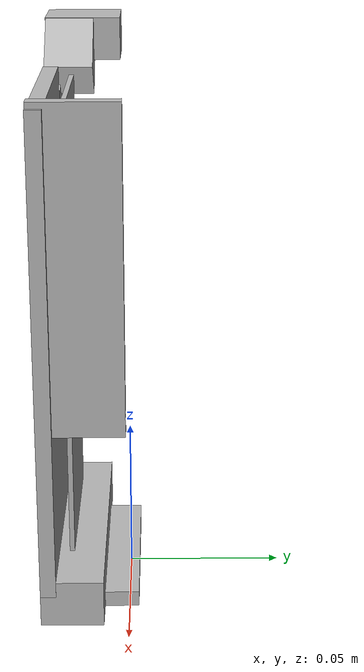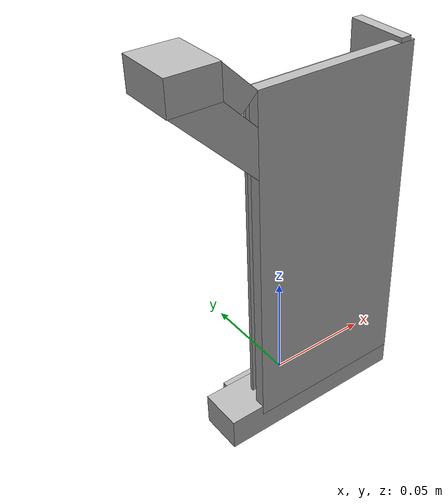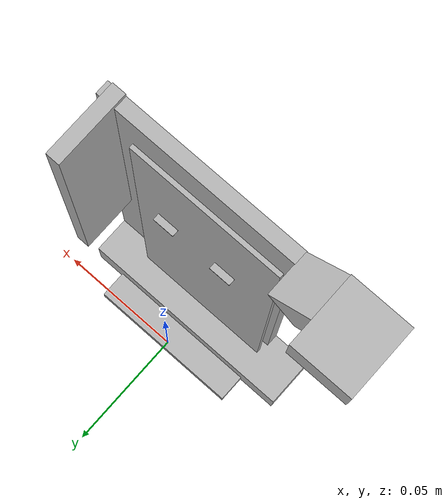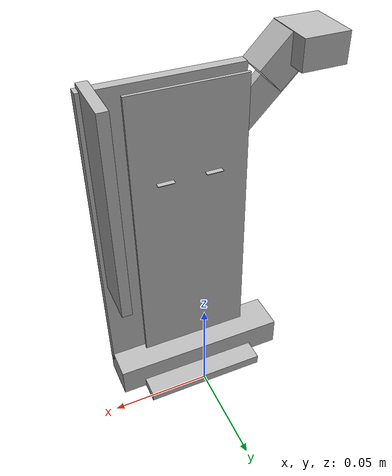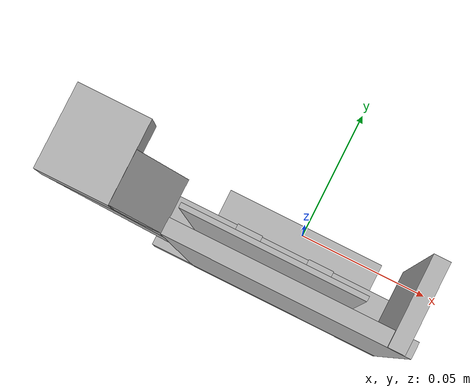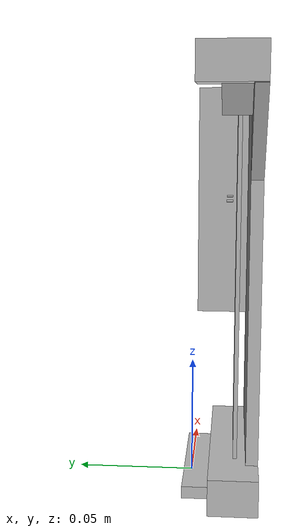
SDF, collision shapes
<?xml version="1.0" ?>
<sdf version="1.9">
  <model name="NIC Card Mount 0">
    <static>true</static>

    <link name="nic_card_mount_link">
      <visual name="nic_card_mount_visual">
        <geometry>
          <mesh>
            <uri>nic_card_mount_visual.glb</uri>
          </mesh>
        </geometry>
      </visual>
      <collision name="v1015085006_collider_box">
        <pose>0.006002 -0.025497 0.0875 0.0 0.0 1.570796</pose>
        <geometry>
          <box>
            <size>0.005007 0.073996 0.155</size>
          </box>
        </geometry>
      </collision>
      <collision name="v1015085006_collider_box.001">
        <pose>-0.0555 -0.0155 0.172 0.0 0.0 1.570796</pose>
        <geometry>
          <box>
            <size>0.025 0.0215 0.014</size>
          </box>
        </geometry>
      </collision>
      <collision name="v1015085006_collider_box.002">
        <pose>0.038535 -0.01425 0.1155 0.0 0.0 1.570796</pose>
        <geometry>
          <box>
            <size>0.0275 0.005064 0.103</size>
          </box>
        </geometry>
      </collision>
      <collision name="v1015085006_collider_box.003">
        <pose>-0.001997 -0.017997 0.0075 0.0 0.0 1.570796</pose>
        <geometry>
          <box>
            <size>0.020006 0.089788 0.015</size>
          </box>
        </geometry>
      </collision>
      <collision name="v1015085006_collider_box004_collider_box">
        <pose>-0.042132 -0.025499 0.151803 0.785 0.0 1.570796</pose>
        <geometry>
          <box>
            <size>0.005001 0.0515 0.015</size>
          </box>
        </geometry>
      </collision>
      <collision name="v1015085006_collider_box.005">
        <pose>-0.043 -0.0198 0.1665 0.78 0.0 1.570796</pose>
        <geometry>
          <box>
            <size>0.016 0.02 0.015</size>
          </box>
        </geometry>
      </collision>
      <collision name="v1015085011_collider_box">
        <pose>3e-06 -0.004871 0.0025 0.0 -0.0 1.570796</pose>
        <geometry>
          <box>
            <size>0.015669 0.062 0.005</size>
          </box>
        </geometry>
      </collision>
    </link>

    <link name="nic_card_link">
      <pose>-0.002 -0.01785 0.0899 -1.57 0 0</pose>
      <inertial auto="true">
        <mass>0.15</mass>
      </inertial>
      <visual name="nic_card_visual">
        <geometry>
          <mesh>
            <uri>nic_card_visual.glb</uri>
          </mesh>
        </geometry>
      </visual>
      <collision name="pcb_collider_box">
        <pose>0.0 0.0 -0.0008 0.0 0.0 0.0</pose>
        <geometry>
          <box>
            <size>0.056 0.145 0.0016</size>
          </box>
        </geometry>
        <surface>
          <friction>
            <torsional>
              <coefficient>0.1</coefficient>
            </torsional>
            <bullet>
              <friction>0.1</friction>
              <friction2>0.1</friction2>
              <rolling_friction>0.1</rolling_friction>
            </bullet>
          </friction>
        </surface>
      </collision>
      <collision name="contact_collision_01">
        <pose>0.012963 -0.0305 0.002845 3.128092 0.0 0.0</pose>
        <geometry>
          <box>
            <size>0.008112 0.00025 0.0025</size>
          </box>
        </geometry>
        <surface>
          <friction>
            <torsional>
              <coefficient>0.1</coefficient>
            </torsional>
            <bullet>
              <friction>0.1</friction>
              <friction2>0.1</friction2>
              <rolling_friction>0.1</rolling_friction>
            </bullet>
          </friction>
        </surface>
      </collision>
      <collision name="contact_collision_02">
        <pose>-0.010237 -0.0305 0.002845 3.128092 0.0 0.0</pose>
        <geometry>
          <box>
            <size>0.008112 0.00025 0.0025</size>
          </box>
        </geometry>
        <surface>
          <friction>
            <torsional>
              <coefficient>0.1</coefficient>
            </torsional>
            <bullet>
              <friction>0.1</friction>
              <friction2>0.1</friction2>
              <rolling_friction>0.1</rolling_friction>
            </bullet>
          </friction>
        </surface>
      </collision>
    </link>

    <joint name="card_joint" type="fixed">
      <parent>nic_card_mount_link</parent>
      <child>nic_card_link</child>
    </joint>

    <link name="sfp_port_0_link">
      <pose relative_to="nic_card_link">0.01295 -0.031572 0.00501 4.69895 0 0</pose>
    </link>
    <link name="sfp_port_0_link_entrance">
      <pose relative_to="sfp_port_0_link">0 0 -0.0458 0 0 0</pose>
    </link>
    <joint name="sfp_port_0_joint" type="fixed">
      <parent>nic_card_link</parent>
      <child>sfp_port_0_link</child>
    </joint>
    <joint name="sfp_port_0_entrance_joint" type="fixed">
      <parent>sfp_port_0_link</parent>
      <child>sfp_port_0_link_entrance</child>
    </joint>

    <link name="sfp_port_1_link">
      <pose relative_to="nic_card_link">-0.01025 -0.031572 0.00501 4.69895 0 0</pose>
    </link>
    <link name="sfp_port_1_link_entrance">
      <pose relative_to="sfp_port_1_link">0 0 -0.0458 0 0 0</pose>
    </link>
    <joint name="sfp_port_1_joint" type="fixed">
      <parent>nic_card_link</parent>
      <child>sfp_port_1_link</child>
    </joint>
    <joint name="sfp_port_1_entrance_joint" type="fixed">
      <parent>sfp_port_1_link</parent>
      <child>sfp_port_1_link_entrance</child>
    </joint>
  </model>
</sdf>
